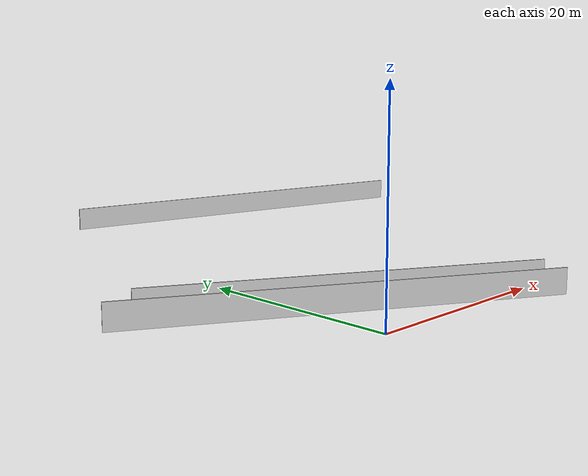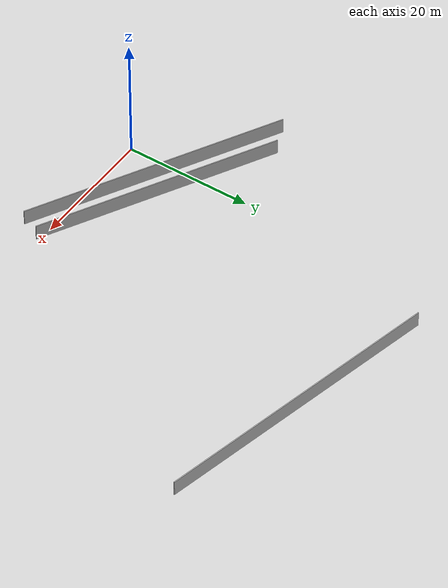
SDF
<?xml version="1.0" ?>
<sdf version="1.6">
  <model name="sps_1705">
    <pose frame="">0 0 0 0 -0 0</pose>
    <static>1</static>
    <self_collide>0</self_collide>
    <allow_auto_disable>0</allow_auto_disable>
    <link name="Wall189">
      <kinematic>0</kinematic>
      <gravity>1</gravity>
      <self_collide>0</self_collide>
      <collision name="collision">
        <geometry>
          <box>
            <size>41.7006 0.15 2.5</size>
          </box>
        </geometry>
        <pose frame="">0 0 0 0 -0 0</pose>
      </collision>
      <visual name="visual">
        <geometry>
          <box>
            <size>41.7006 0.15 2.5</size>
          </box>
        </geometry>
        <pose frame="">0 0 0 0 -0 0</pose>
        <cast_shadows>1</cast_shadows>
        <transparency>0.0</transparency>
      </visual>
      <pose frame="">2.77816 6.17718 1.25 0 -0 2.64268</pose>
    </link>
    <link name="Wall531">
      <kinematic>0</kinematic>
      <gravity>1</gravity>
      <self_collide>0</self_collide>
      <collision name="collision">
        <geometry>
          <box>
            <size>38.7045 0.15 2.5</size>
          </box>
        </geometry>
        <pose frame="">0 0 0 0 -0 0</pose>
      </collision>
      <visual name="visual">
        <geometry>
          <box>
            <size>38.7045 0.15 2.5</size>
          </box>
        </geometry>
        <pose frame="">0 0 0 0 -0 0</pose>
        <cast_shadows>1</cast_shadows>
        <transparency>0.0</transparency>
      </visual>
      <pose frame="">5.58426 8.6335 1.25 0 0 -0.498918</pose>
    </link>
    <link name="Wall6588">
      <kinematic>0</kinematic>
      <gravity>1</gravity>
      <self_collide>0</self_collide>
      <collision name="collision">
        <geometry>
          <box>
            <size>45.9415 0.15 2.5</size>
          </box>
        </geometry>
        <pose frame="">0 0 0 0 -0 0</pose>
      </collision>
      <visual name="visual">
        <geometry>
          <box>
            <size>45.9415 0.15 2.5</size>
          </box>
        </geometry>
        <pose frame="">0 0 0 0 -0 0</pose>
        <cast_shadows>1</cast_shadows>
        <transparency>0.0</transparency>
      </visual>
      <pose frame="">28.7053 48.127 1.25 0 -0 2.9176</pose>
    </link>
  </model>
</sdf>
